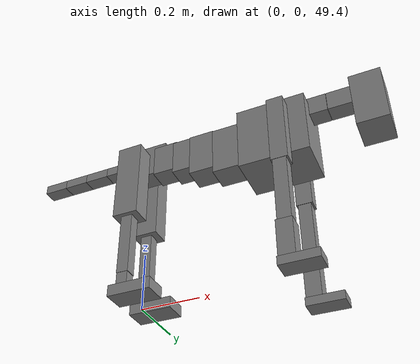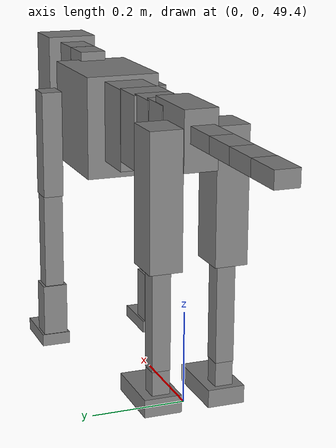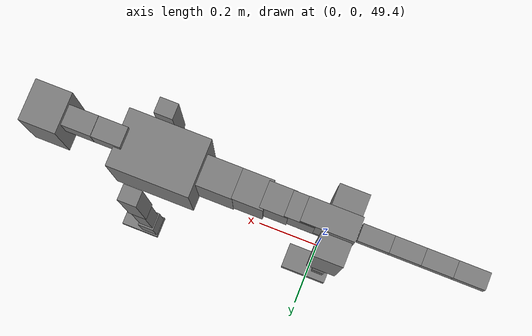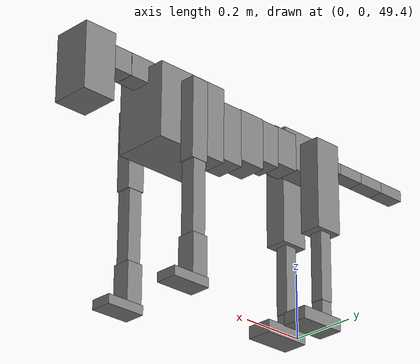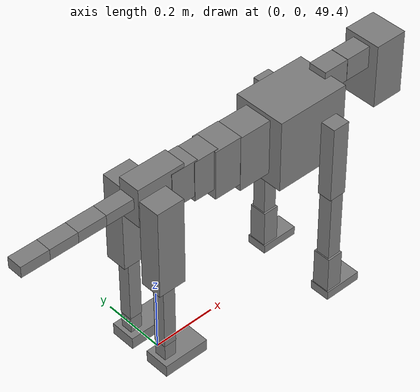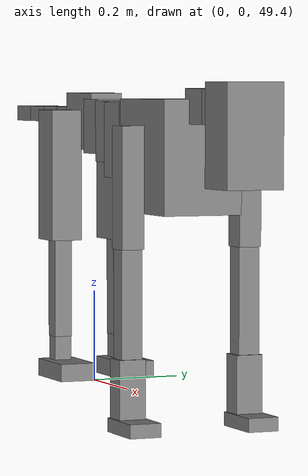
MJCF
<mujoco model="dog">

    <default>
        <joint armature="0.02" stiffness="1" damping="0.2" limited="true"/>
        <geom condim="3" friction="1 0.05 0.05" margin="0.01"/>
        <motor ctrllimited="true" ctrlrange="-1.0 1.0" forcelimited="true" gear="50"/>
    </default>

    <compiler inertiafromgeom="true" angle="radian"/>

    <option timestep="0.016" iterations="50" tolerance="1e-10" solver="Newton" jacobian="dense" cone="pyramidal"/>

    <size nconmax="20000" njmax="60000" nstack="5000000"/>
    <visual>
        <map force="0.1" zfar="30"/>
        <rgba haze="0.15 0.25 0.35 1"/>
        <quality shadowsize="2048"/>
        <global offwidth="800" offheight="800"/>
    </visual>

    <asset>
        <texture type="skybox" builtin="gradient" rgb1="0.3 0.5 0.7" rgb2="0 0 0" width="512" height="512"/>
        <texture name="texplane" type="2d" builtin="checker" rgb1=".2 .3 .4" rgb2=".1 0.15 0.2" width="512" height="512"
                 mark="cross" markrgb=".8 .8 .8"/>
        <texture name="texgeom" type="cube" builtin="flat" mark="cross" width="127" height="1278" rgb1="0.8 0.6 0.4"
                 rgb2="0.8 0.6 0.4" markrgb="1 1 1" random="0.01"/>

        <material name="matplane" reflectance="0.3" texture="texplane" texrepeat="1 1" texuniform="true"/>
        <material name="matgeom" texture="texgeom" texuniform="true" rgba="0.8 0.6 .4 1"/>
    </asset>

    <worldbody>
        <geom name="floor" pos="0 0 0" size="0 0 .25" type="plane" material="matplane" condim="3"/>

        <light directional="false" diffuse=".2 .2 .2" specular="0 0 0" pos="0 0 5" dir="0 0 -1" castshadow="false"/>
        <light mode="targetbodycom" target="torso" directional="false" diffuse=".8 .8 .8" specular="0.3 0.3 0.3"
               pos="0 0 4.0" dir="0 0 -1"/>

        <body name="root" pos="0 0 50">
            <freejoint name="root_1"/>
            <geom type="box" pos="0 0 -0.02" size="0.0774  0.0358  0.063" density="2030"/>

            <body name="spine1" pos="0.054 0 0">
                <joint name="spine1_y" axis="0 1 0" range="0 0.7" limited="true"/>
                <geom type="box" pos="0.02375 0 -0.03" size="0.04375  0.0375  0.05985" density="2030"/>

                <body name="spine2" pos="0.0612 0 0">
                    <joint name="spine2_y" axis="0 1 0" range="-0.15 0.15" limited="true"/>
                    <geom type="box" pos="0.03555  0  -0.04" size="0.04055  0.039  0.06615" density="2030"/>

                    <body name="spine3" pos="0.0730 0 0">
                        <joint name="spine3_y" axis="0 1 0" range="-0.15 0.15" limited="true"/>
                        <geom type="box" pos="0.03555  0  -0.057" size="0.04555  0.0445  0.081" density="2030"/>

                        <body name="spine4" pos="0.0780 0 0">
                            <joint name="spine4_y" axis="0 1 0" range="-0.15 0.15" limited="true"/>
                            <geom type="box" pos="0.05265  0  -0.07" size="0.05265  0.045  0.09135" density="2030"/>

                            <body name="torso" pos="0.1082 0 0">
                                <joint name="torso_y" axis="0 1 0" range="-0.15 0.15" limited="true"/>
                                <geom type="box" pos="0.11925  0  -0.085" size="0.11925  0.085  0.11745"
                                      density="2030"/>

                                <body name="neck1" pos="0.2160  0   0.0180">
                                    <joint name="neck1_y" axis="0 1 0" range="-1.2  -1" limited="true"/>
                                    <geom type="box" pos="0.0423  0  0" size="0.0423  0.03  0.036" density="2325"/>

                                    <body name="neck2" pos="0.0853  0  0">
                                        <joint name="neck2_y" axis="0 1 0" range="0.1  0" limited="true"/>
                                        <geom type="box" pos="0.0423  0  0" size="0.0423  0.03  0.036" density="2325"/>

                                        <body name="head" pos="0.0853  0  0">
                                            <joint name="head_y" axis="0 1 0" range="-0.3  -0.2" limited="true"/>
                                            <geom type="box" pos="0.0531  0  -0.055" size="0.0531  0.06  0.1044"
                                                  density="4030"/>

                                        </body>
                                    </body>
                                </body>

                                <body name="front_shoulder" pos="0.156  0   -0.0480">
                                    <joint name="front_shoulder_y" axis="0 1 0" range="-1 1.5" limited="true"/>
                                    <geom type="box" pos="0 0.13 -0.0986" size="0.0278  0.0238  0.1253" density="1158"/>
                                    <geom type="box" pos="0 -0.13 -0.0986" size="0.0278  0.0238  0.1253"
                                          density="1158"/>

                                    <body name="front_elbow" pos="0  0  -0.1972">
                                        <joint name="front_elbow_y" axis="0 1 0" range="-2 0" limited="true"/>
                                        <geom type="box" pos="0 0.13 -0.1316" size="0.0222  0.0227  0.1316"
                                              density="1081"/>
                                        <geom type="box" pos="0 -0.13 -0.1316" size="0.0222  0.0227  0.1316"
                                              density="1081"/>

                                        <body name="front_wrist" pos="0  0  -0.2632">
                                            <joint name="front_wrist_y" axis="0 1 0" range="-0.2 0" limited="true"/>
                                            <geom type="box" pos="0 0.13 -0.0620" size="0.0258  0.0287  0.0752"
                                                  density="1664"/>
                                            <geom type="box" pos="0 -0.13 -0.0620" size="0.0258  0.0287  0.0752"
                                                  density="1664"/>

                                            <body name="front_finger_end" pos="0  0  -0.1240">
                                                <joint name="front_finger_y" axis="0 1 0" range="-0.4 1"
                                                       limited="true"/>
                                                <geom type="box" pos="0.0335  0.13  0.0006"
                                                      size="0.0614  0.0335  0.0144" density="1515"/>
                                                <geom type="box" pos="0.0335  -0.13  0.0006"
                                                      size="0.0614  0.0335  0.0144" density="1515"/>

                                            </body>

                                        </body>
                                    </body>
                                </body>

                            </body>
                        </body>
                    </body>
                </body>
            </body>

            <body name="back_hip" pos="-0.03 0 -0.018">
                <joint name="back_hip_y" axis="0 1 0" range="-1.5 0.3" limited="true"/>
                <geom type="box" pos="0 0.07 -0.1219" size="0.0444  0.0348  0.1447" density="1154"/>
                <geom type="box" pos="0 -0.07 -0.1219" size="0.0444  0.0348  0.1447" density="1154"/>

                <body name="back_knee" pos="0  0  -0.2438">
                    <joint name="back_knee_y" axis="0 1 0" range="0 2.8" limited="true"/>
                    <geom type="box" pos="0 0.07 -0.1117" size="0.0202  0.0199  0.1272" density="1227"/>
                    <geom type="box" pos="0 -0.07 -0.1117" size="0.0202  0.0199  0.1272" density="1227"/>

                    <body name="back_ankle" pos="0  0  -0.2234">
                        <joint name="back_ankle_y" axis="0 1 0" range="-2.2 0" limited="true"/>
                        <geom type="box" pos="0 0.07 -0.0415" size="0.0191  0.0191  0.0527" density="1284"/>
                        <geom type="box" pos="0 -0.07 -0.0415" size="0.0191  0.0191  0.0527" density="1284"/>

                        <body name="back_toe_end" pos="0  0  -0.0829">
                            <joint name="back_toe_y" axis="0 1 0" range="-0.4 1" limited="true"/>
                            <geom type="box" pos="0.0401  0.07  -0.0042" size="0.0735  0.0401  0.0192" density="1515"/>
                            <geom type="box" pos="0.0401  -0.07  -0.0042" size="0.0735  0.0401  0.0192" density="1515"/>

                        </body>
                    </body>
                </body>
            </body>

            <body name="tail1" pos="-0.074 0 -0.006">
                <joint name="tail1_y" axis="0 1 0" range="-0.2 0.2" limited="true"/>
                <geom type="box" pos="-0.0536  0  0" size="0.045  0.025  0.0175" density="1587"/>

                <body name="tail2" pos="-0.09 0 0">
                    <joint name="tail2_y" axis="0 1 0" range="-0.2 0.2" limited="true"/>
                    <geom type="box" pos="-0.0536  0  0" size="0.045  0.025  0.0175" density="1587"/>

                    <body name="tail3" pos="-0.09 0 0">
                        <joint name="tail3_y" axis="0 1 0" range="-0.2 0.2" limited="true"/>
                        <geom type="box" pos="-0.0536  0  0" size="0.045  0.025  0.0175" density="1587"/>

                        <body name="tail4" pos="-0.09 0 0">
                            <joint name="tail4_y" axis="0 1 0" range="-0.2 0.2" limited="true"/>
                            <geom type="box" pos="-0.0536  0  0" size="0.045  0.025  0.0175" density="1587"/>

                        </body>
                    </body>
                </body>
            </body>
        </body>
    </worldbody>

    <actuator>
        <motor joint="spine1_y" forcerange="-150 150     "/>
        <motor joint="spine2_y" forcerange="-150 150     "/>
        <motor joint="spine3_y" forcerange="-150 150     "/>
        <motor joint="spine4_y" forcerange="-150 150     "/>
        <motor joint="torso_y" forcerange="-150 150     "/>
        <motor joint="neck1_y" forcerange="-100 100       "/>
        <motor joint="neck2_y" forcerange="-100 100       "/>
        <motor joint="head_y" forcerange="-150 150       "/>
        <motor joint="front_shoulder_y" forcerange="-107.58 150.97"/>
        <motor joint="front_elbow_y" forcerange="-123.79 141.49"/>
        <motor joint="front_wrist_y" forcerange="-134.60 94.67"/>
        <motor joint="front_finger_y" forcerange="-88.52 50.21"/>
        <motor joint="back_hip_y" forcerange="-310.79 353.76"/>
        <motor joint="back_knee_y" forcerange="-253.98 235.85"/>
        <motor joint="back_angle_y" forcerange="-62.30 143.68"/>
        <motor joint="back_toe_y" forcerange="-121.86 119.05"/>
        <motor joint="tail1_y" forcerange="-50 50     "/>
        <motor joint="tail2_y" forcerange="-50 50     "/>
        <motor joint="tail3_y" forcerange="-50 50     "/>
        <motor joint="tail4_y" forcerange="-50 50     "/>
    </actuator>
</mujoco>
